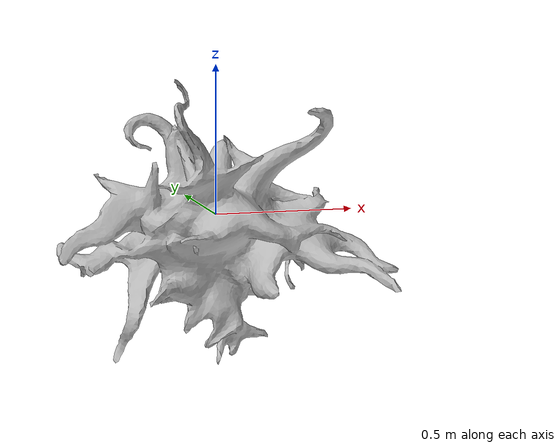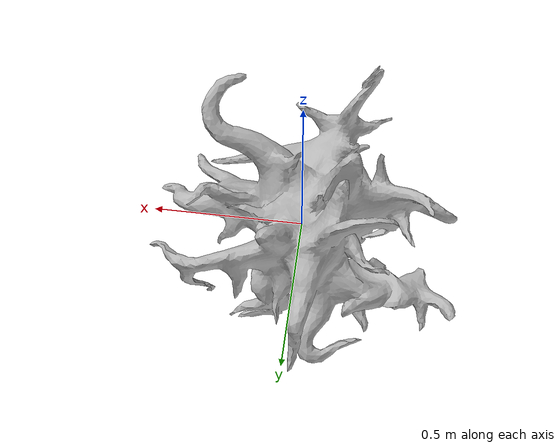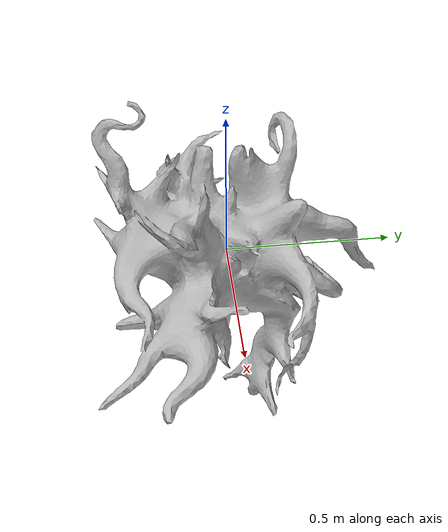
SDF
<?xml version="1.0" ?>
<sdf version='1.4'>
  <model name="plant">
      <static>1</static>
        <link name='link_1'>
            <visual name='visual'>
            <pose frame=''>0 0 0 0 0 0</pose>
            <geometry>
            <mesh>
                <uri>model://plant_alien/meshes/alien_plant.dae</uri>
                <scale>0.1 0.1 0.1</scale>
            </mesh>
            </geometry>
            <cast_shadows>0</cast_shadows>
            <transparency>0</transparency>
        </visual>

        <collision name='collision'>
            <laser_retro>0</laser_retro>
            <pose frame=''>0 0 0 0 0 0</pose>
            <geometry>
            <mesh>
                <uri>model://plant_alien/meshes/alien_plant.stl</uri>
                <scale>0.1 0.1 0.1</scale>
            </mesh>
            </geometry>
        </collision>
        </link>
  </model>
</sdf>
